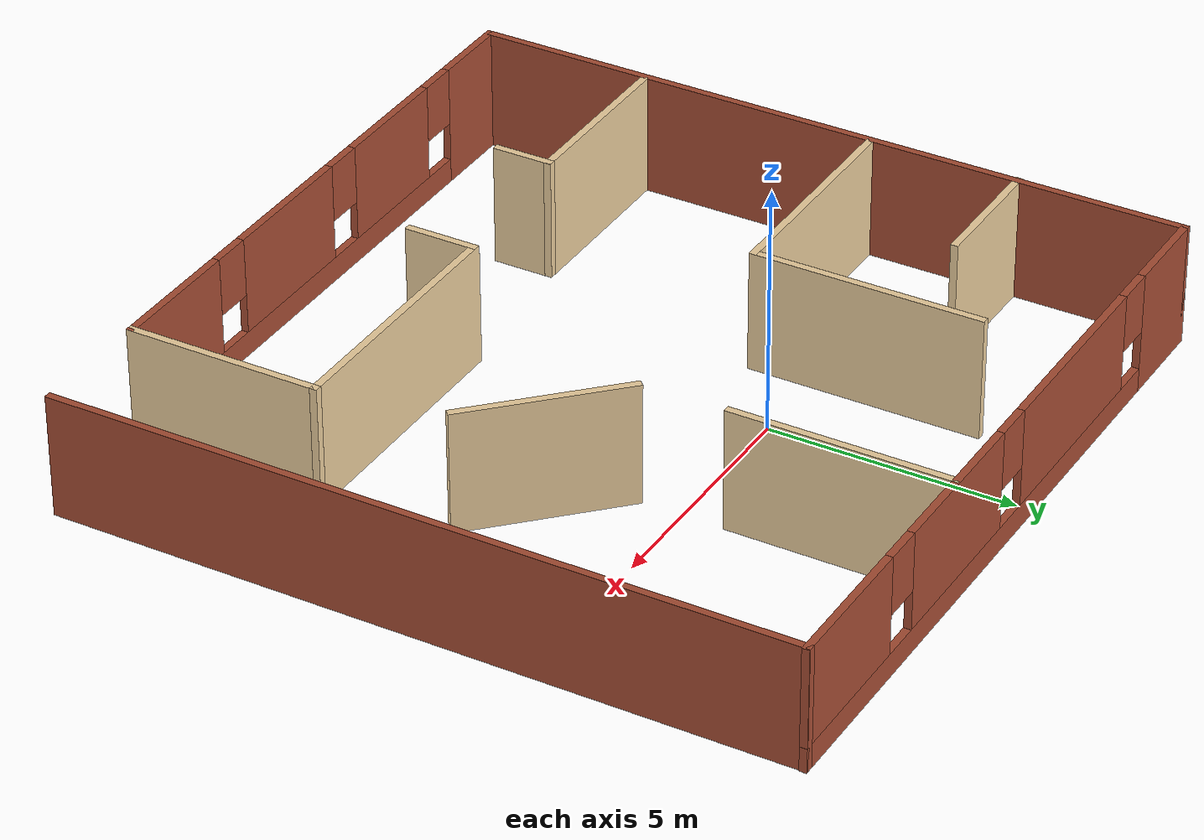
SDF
<?xml version='1.0'?>
<sdf version='1.7'>
  <model name='gMaze8'>
    <pose>1.10397 -2.1707 0 0 -0 0</pose>
    <link name='Wall_0'>
      <pose>0.009097 7.425 0 0 -0 0</pose>
      <visual name='Wall_0_Visual_0'>
        <pose>-6.50945 0 1.25 0 -0 0</pose>
        <geometry>
          <box>
            <size>1.98109 0.15 2.5</size>
          </box>
        </geometry>
        <material>
          <script>
            <uri>file://media/materials/scripts/gazebo.material</uri>
            <name>Gazebo/Bricks</name>
          </script>
          <ambient>1 1 1 1</ambient>
        </material>
        <meta>
          <layer>0</layer>
        </meta>
      </visual>
      <collision name='Wall_0_Collision_0'>
        <geometry>
          <box>
            <size>1.98109 0.15 2.5</size>
          </box>
        </geometry>
        <pose>-6.50945 0 1.25 0 -0 0</pose>
      </collision>
      <visual name='Wall_0_Visual_1'>
        <pose>0.990545 0 0.25 0 -0 0</pose>
        <geometry>
          <box>
            <size>13.0189 0.15 0.5</size>
          </box>
        </geometry>
        <material>
          <script>
            <uri>file://media/materials/scripts/gazebo.material</uri>
            <name>Gazebo/Bricks</name>
          </script>
          <ambient>1 1 1 1</ambient>
        </material>
        <meta>
          <layer>0</layer>
        </meta>
      </visual>
      <collision name='Wall_0_Collision_1'>
        <geometry>
          <box>
            <size>13.0189 0.15 0.5</size>
          </box>
        </geometry>
        <pose>0.990545 0 0.25 0 -0 0</pose>
      </collision>
      <visual name='Wall_0_Visual_2'>
        <pose>-2.60363 0 1.5 0 -0 0</pose>
        <geometry>
          <box>
            <size>4.23056 0.15 2</size>
          </box>
        </geometry>
        <material>
          <script>
            <uri>file://media/materials/scripts/gazebo.material</uri>
            <name>Gazebo/Bricks</name>
          </script>
          <ambient>1 1 1 1</ambient>
        </material>
        <meta>
          <layer>0</layer>
        </meta>
      </visual>
      <collision name='Wall_0_Collision_2'>
        <geometry>
          <box>
            <size>4.23056 0.15 2</size>
          </box>
        </geometry>
        <pose>-2.60363 0 1.5 0 -0 0</pose>
      </collision>
      <visual name='Wall_0_Visual_3'>
        <pose>2.02238 0 1.5 0 -0 0</pose>
        <geometry>
          <box>
            <size>3.42145 0.15 2</size>
          </box>
        </geometry>
        <material>
          <script>
            <uri>file://media/materials/scripts/gazebo.material</uri>
            <name>Gazebo/Bricks</name>
          </script>
          <ambient>1 1 1 1</ambient>
        </material>
        <meta>
          <layer>0</layer>
        </meta>
      </visual>
      <collision name='Wall_0_Collision_3'>
        <geometry>
          <box>
            <size>3.42145 0.15 2</size>
          </box>
        </geometry>
        <pose>2.02238 0 1.5 0 -0 0</pose>
      </collision>
      <visual name='Wall_0_Visual_4'>
        <pose>6.01655 0 1.5 0 -0 0</pose>
        <geometry>
          <box>
            <size>2.9669 0.15 2</size>
          </box>
        </geometry>
        <material>
          <script>
            <uri>file://media/materials/scripts/gazebo.material</uri>
            <name>Gazebo/Bricks</name>
          </script>
          <ambient>1 1 1 1</ambient>
        </material>
        <meta>
          <layer>0</layer>
        </meta>
      </visual>
      <collision name='Wall_0_Collision_4'>
        <geometry>
          <box>
            <size>2.9669 0.15 2</size>
          </box>
        </geometry>
        <pose>6.01655 0 1.5 0 -0 0</pose>
      </collision>
      <visual name='Wall_0_Visual_5'>
        <pose>-5.11891 0 1.9 0 -0 0</pose>
        <geometry>
          <box>
            <size>0.8 0.15 1.2</size>
          </box>
        </geometry>
        <material>
          <script>
            <uri>file://media/materials/scripts/gazebo.material</uri>
            <name>Gazebo/Bricks</name>
          </script>
          <ambient>1 1 1 1</ambient>
        </material>
        <meta>
          <layer>0</layer>
        </meta>
      </visual>
      <collision name='Wall_0_Collision_5'>
        <geometry>
          <box>
            <size>0.8 0.15 1.2</size>
          </box>
        </geometry>
        <pose>-5.11891 0 1.9 0 -0 0</pose>
      </collision>
      <visual name='Wall_0_Visual_6'>
        <pose>-0.088347 0 1.9 0 -0 0</pose>
        <geometry>
          <box>
            <size>0.8 0.15 1.2</size>
          </box>
        </geometry>
        <material>
          <script>
            <uri>file://media/materials/scripts/gazebo.material</uri>
            <name>Gazebo/Bricks</name>
          </script>
          <ambient>1 1 1 1</ambient>
        </material>
        <meta>
          <layer>0</layer>
        </meta>
      </visual>
      <collision name='Wall_0_Collision_6'>
        <geometry>
          <box>
            <size>0.8 0.15 1.2</size>
          </box>
        </geometry>
        <pose>-0.088347 0 1.9 0 -0 0</pose>
      </collision>
      <visual name='Wall_0_Visual_7'>
        <pose>4.1331 0 1.9 0 -0 0</pose>
        <geometry>
          <box>
            <size>0.8 0.15 1.2</size>
          </box>
        </geometry>
        <material>
          <script>
            <uri>file://media/materials/scripts/gazebo.material</uri>
            <name>Gazebo/Bricks</name>
          </script>
          <ambient>1 1 1 1</ambient>
        </material>
        <meta>
          <layer>0</layer>
        </meta>
      </visual>
      <collision name='Wall_0_Collision_7'>
        <geometry>
          <box>
            <size>0.8 0.15 1.2</size>
          </box>
        </geometry>
        <pose>4.1331 0 1.9 0 -0 0</pose>
      </collision>
    </link>
    <link name='Wall_1'>
      <collision name='Wall_1_Collision'>
        <geometry>
          <box>
            <size>15 0.15 2.5</size>
          </box>
        </geometry>
        <pose>0 0 1.25 0 -0 0</pose>
      </collision>
      <visual name='Wall_1_Visual'>
        <pose>0 0 1.25 0 -0 0</pose>
        <geometry>
          <box>
            <size>15 0.15 2.5</size>
          </box>
        </geometry>
        <material>
          <script>
            <uri>file://media/materials/scripts/gazebo.material</uri>
            <name>Gazebo/Bricks</name>
          </script>
          <ambient>1 1 1 1</ambient>
        </material>
        <meta>
          <layer>0</layer>
        </meta>
      </visual>
      <pose>7.41398 -0 0 0 -0 -1.5708</pose>
    </link>
    <link name='Wall_3'>
      <collision name='Wall_3_Collision'>
        <geometry>
          <box>
            <size>15 0.15 2.5</size>
          </box>
        </geometry>
        <pose>0 0 1.25 0 -0 0</pose>
      </collision>
      <visual name='Wall_3_Visual'>
        <pose>0 0 1.25 0 -0 0</pose>
        <geometry>
          <box>
            <size>15 0.15 2.5</size>
          </box>
        </geometry>
        <material>
          <script>
            <uri>file://media/materials/scripts/gazebo.material</uri>
            <name>Gazebo/Bricks</name>
          </script>
          <ambient>1 1 1 1</ambient>
        </material>
        <meta>
          <layer>0</layer>
        </meta>
      </visual>
      <pose>-7.4159 -0 0 0 -0 -1.5708</pose>
    </link>
    <link name='Wall_4'>
      <pose>-1.2409 -7.425 0 0 -0 0</pose>
      <visual name='Wall_4_Visual_0'>
        <pose>-5.37558 0 1.25 0 -0 0</pose>
        <geometry>
          <box>
            <size>1.74884 0.15 2.5</size>
          </box>
        </geometry>
        <material>
          <script>
            <uri>file://media/materials/scripts/gazebo.material</uri>
            <name>Gazebo/Bricks</name>
          </script>
          <ambient>1 1 1 1</ambient>
        </material>
        <meta>
          <layer>0</layer>
        </meta>
      </visual>
      <collision name='Wall_4_Collision_0'>
        <geometry>
          <box>
            <size>1.74884 0.15 2.5</size>
          </box>
        </geometry>
        <pose>-5.37558 0 1.25 0 -0 0</pose>
      </collision>
      <visual name='Wall_4_Visual_1'>
        <pose>0.87442 0 0.25 0 -0 0</pose>
        <geometry>
          <box>
            <size>10.7512 0.15 0.5</size>
          </box>
        </geometry>
        <material>
          <script>
            <uri>file://media/materials/scripts/gazebo.material</uri>
            <name>Gazebo/Bricks</name>
          </script>
          <ambient>1 1 1 1</ambient>
        </material>
        <meta>
          <layer>0</layer>
        </meta>
      </visual>
      <collision name='Wall_4_Collision_1'>
        <geometry>
          <box>
            <size>10.7512 0.15 0.5</size>
          </box>
        </geometry>
        <pose>0.87442 0 0.25 0 -0 0</pose>
      </collision>
      <visual name='Wall_4_Visual_2'>
        <pose>-2.40199 0 1.5 0 -0 0</pose>
        <geometry>
          <box>
            <size>2.59834 0.15 2</size>
          </box>
        </geometry>
        <material>
          <script>
            <uri>file://media/materials/scripts/gazebo.material</uri>
            <name>Gazebo/Bricks</name>
          </script>
          <ambient>1 1 1 1</ambient>
        </material>
        <meta>
          <layer>0</layer>
        </meta>
      </visual>
      <collision name='Wall_4_Collision_2'>
        <geometry>
          <box>
            <size>2.59834 0.15 2</size>
          </box>
        </geometry>
        <pose>-2.40199 0 1.5 0 -0 0</pose>
      </collision>
      <visual name='Wall_4_Visual_3'>
        <pose>1.19683 0 1.5 0 -0 0</pose>
        <geometry>
          <box>
            <size>2.99931 0.15 2</size>
          </box>
        </geometry>
        <material>
          <script>
            <uri>file://media/materials/scripts/gazebo.material</uri>
            <name>Gazebo/Bricks</name>
          </script>
          <ambient>1 1 1 1</ambient>
        </material>
        <meta>
          <layer>0</layer>
        </meta>
      </visual>
      <collision name='Wall_4_Collision_3'>
        <geometry>
          <box>
            <size>2.99931 0.15 2</size>
          </box>
        </geometry>
        <pose>1.19683 0 1.5 0 -0 0</pose>
      </collision>
      <visual name='Wall_4_Visual_4'>
        <pose>4.87324 0 1.5 0 -0 0</pose>
        <geometry>
          <box>
            <size>2.75352 0.15 2</size>
          </box>
        </geometry>
        <material>
          <script>
            <uri>file://media/materials/scripts/gazebo.material</uri>
            <name>Gazebo/Bricks</name>
          </script>
          <ambient>1 1 1 1</ambient>
        </material>
        <meta>
          <layer>0</layer>
        </meta>
      </visual>
      <collision name='Wall_4_Collision_4'>
        <geometry>
          <box>
            <size>2.75352 0.15 2</size>
          </box>
        </geometry>
        <pose>4.87324 0 1.5 0 -0 0</pose>
      </collision>
      <visual name='Wall_4_Visual_5'>
        <pose>-4.10116 0 1.9 0 -0 0</pose>
        <geometry>
          <box>
            <size>0.8 0.15 1.2</size>
          </box>
        </geometry>
        <material>
          <script>
            <uri>file://media/materials/scripts/gazebo.material</uri>
            <name>Gazebo/Bricks</name>
          </script>
          <ambient>1 1 1 1</ambient>
        </material>
        <meta>
          <layer>0</layer>
        </meta>
      </visual>
      <collision name='Wall_4_Collision_5'>
        <geometry>
          <box>
            <size>0.8 0.15 1.2</size>
          </box>
        </geometry>
        <pose>-4.10116 0 1.9 0 -0 0</pose>
      </collision>
      <visual name='Wall_4_Visual_6'>
        <pose>-0.702821 0 1.9 0 -0 0</pose>
        <geometry>
          <box>
            <size>0.8 0.15 1.2</size>
          </box>
        </geometry>
        <material>
          <script>
            <uri>file://media/materials/scripts/gazebo.material</uri>
            <name>Gazebo/Bricks</name>
          </script>
          <ambient>1 1 1 1</ambient>
        </material>
        <meta>
          <layer>0</layer>
        </meta>
      </visual>
      <collision name='Wall_4_Collision_6'>
        <geometry>
          <box>
            <size>0.8 0.15 1.2</size>
          </box>
        </geometry>
        <pose>-0.702821 0 1.9 0 -0 0</pose>
      </collision>
      <visual name='Wall_4_Visual_7'>
        <pose>3.09648 0 1.9 0 -0 0</pose>
        <geometry>
          <box>
            <size>0.8 0.15 1.2</size>
          </box>
        </geometry>
        <material>
          <script>
            <uri>file://media/materials/scripts/gazebo.material</uri>
            <name>Gazebo/Bricks</name>
          </script>
          <ambient>1 1 1 1</ambient>
        </material>
        <meta>
          <layer>0</layer>
        </meta>
      </visual>
      <collision name='Wall_4_Collision_7'>
        <geometry>
          <box>
            <size>0.8 0.15 1.2</size>
          </box>
        </geometry>
        <pose>3.09648 0 1.9 0 -0 0</pose>
      </collision>
    </link>
    <link name='Wall_56'>
      <collision name='Wall_56_Collision'>
        <geometry>
          <box>
            <size>4 0.15 2.5</size>
          </box>
        </geometry>
        <pose>0 0 1.25 0 -0 0</pose>
      </collision>
      <visual name='Wall_56_Visual'>
        <pose>0 0 1.25 0 -0 0</pose>
        <geometry>
          <box>
            <size>4 0.15 2.5</size>
          </box>
        </geometry>
        <material>
          <script>
            <uri>file://media/materials/scripts/gazebo.material</uri>
            <name>Gazebo/Grey</name>
          </script>
          <ambient>0.921569 0.807843 0.615686 1</ambient>
        </material>
        <meta>
          <layer>0</layer>
        </meta>
      </visual>
      <pose>4.9341 -5.5 0 0 -0 1.5708</pose>
    </link>
    <link name='Wall_57'>
      <collision name='Wall_57_Collision'>
        <geometry>
          <box>
            <size>5.5 0.15 2.5</size>
          </box>
        </geometry>
        <pose>0 0 1.25 0 -0 0</pose>
      </collision>
      <visual name='Wall_57_Visual'>
        <pose>0 0 1.25 0 -0 0</pose>
        <geometry>
          <box>
            <size>5.5 0.15 2.5</size>
          </box>
        </geometry>
        <material>
          <script>
            <uri>file://media/materials/scripts/gazebo.material</uri>
            <name>Gazebo/Grey</name>
          </script>
          <ambient>0.921569 0.807843 0.615686 1</ambient>
        </material>
        <meta>
          <layer>0</layer>
        </meta>
      </visual>
      <pose>2.2591 -3.575 0 0 -0 3.14159</pose>
    </link>
    <link name='Wall_58'>
      <collision name='Wall_58_Collision'>
        <geometry>
          <box>
            <size>1.5 0.15 2.5</size>
          </box>
        </geometry>
        <pose>0 0 1.25 0 -0 0</pose>
      </collision>
      <visual name='Wall_58_Visual'>
        <pose>0 0 1.25 0 -0 0</pose>
        <geometry>
          <box>
            <size>1.5 0.15 2.5</size>
          </box>
        </geometry>
        <material>
          <script>
            <uri>file://media/materials/scripts/gazebo.material</uri>
            <name>Gazebo/Grey</name>
          </script>
          <ambient>0.921569 0.807843 0.615686 1</ambient>
        </material>
        <meta>
          <layer>0</layer>
        </meta>
      </visual>
      <pose>-0.415903 -4.25 0 0 -0 -1.5708</pose>
    </link>
    <link name='Wall_64'>
      <collision name='Wall_64_Collision'>
        <geometry>
          <box>
            <size>4.75 0.15 2.5</size>
          </box>
        </geometry>
        <pose>0 0 1.25 0 -0 0</pose>
      </collision>
      <visual name='Wall_64_Visual'>
        <pose>0 0 1.25 0 -0 0</pose>
        <geometry>
          <box>
            <size>4.75 0.15 2.5</size>
          </box>
        </geometry>
        <material>
          <script>
            <uri>file://media/materials/scripts/gazebo.material</uri>
            <name>Gazebo/Grey</name>
          </script>
          <ambient>0.921569 0.807843 0.615686 1</ambient>
        </material>
        <meta>
          <layer>0</layer>
        </meta>
      </visual>
      <pose>-5.06125 0.974344 0 0 -0 0</pose>
    </link>
    <link name='Wall_65'>
      <collision name='Wall_65_Collision'>
        <geometry>
          <box>
            <size>4.75 0.15 2.5</size>
          </box>
        </geometry>
        <pose>0 0 1.25 0 -0 0</pose>
      </collision>
      <visual name='Wall_65_Visual'>
        <pose>0 0 1.25 0 -0 0</pose>
        <geometry>
          <box>
            <size>4.75 0.15 2.5</size>
          </box>
        </geometry>
        <material>
          <script>
            <uri>file://media/materials/scripts/gazebo.material</uri>
            <name>Gazebo/Grey</name>
          </script>
          <ambient>0.921569 0.807843 0.615686 1</ambient>
        </material>
        <meta>
          <layer>0</layer>
        </meta>
      </visual>
      <pose>-2.76125 3.27434 0 0 -0 1.5708</pose>
    </link>
    <link name='Wall_67'>
      <collision name='Wall_67_Collision'>
        <geometry>
          <box>
            <size>3.5 0.15 2.5</size>
          </box>
        </geometry>
        <pose>0 0 1.25 0 -0 0</pose>
      </collision>
      <visual name='Wall_67_Visual'>
        <pose>0 0 1.25 0 -0 0</pose>
        <geometry>
          <box>
            <size>3.5 0.15 2.5</size>
          </box>
        </geometry>
        <material>
          <script>
            <uri>file://media/materials/scripts/gazebo.material</uri>
            <name>Gazebo/Grey</name>
          </script>
          <ambient>0.921569 0.807843 0.615686 1</ambient>
        </material>
        <meta>
          <layer>0</layer>
        </meta>
      </visual>
      <pose>3.25106 0.07137 0 0 -0 -0.785398</pose>
    </link>
    <link name='Wall_69'>
      <collision name='Wall_69_Collision'>
        <geometry>
          <box>
            <size>4.5 0.15 2.5</size>
          </box>
        </geometry>
        <pose>0 0 1.25 0 -0 0</pose>
      </collision>
      <visual name='Wall_69_Visual'>
        <pose>0 0 1.25 0 -0 0</pose>
        <geometry>
          <box>
            <size>4.5 0.15 2.5</size>
          </box>
        </geometry>
        <material>
          <script>
            <uri>file://media/materials/scripts/gazebo.material</uri>
            <name>Gazebo/Grey</name>
          </script>
          <ambient>0.921569 0.807843 0.615686 1</ambient>
        </material>
        <meta>
          <layer>0</layer>
        </meta>
      </visual>
      <pose>1.9963 5.22489 0 0 -0 1.5708</pose>
    </link>
    <link name='Wall_71'>
      <collision name='Wall_71_Collision'>
        <geometry>
          <box>
            <size>1.25 0.15 2.5</size>
          </box>
        </geometry>
        <pose>0 0 1.25 0 -0 0</pose>
      </collision>
      <visual name='Wall_71_Visual'>
        <pose>0 0 1.25 0 -0 0</pose>
        <geometry>
          <box>
            <size>1.25 0.15 2.5</size>
          </box>
        </geometry>
        <material>
          <script>
            <uri>file://media/materials/scripts/gazebo.material</uri>
            <name>Gazebo/Grey</name>
          </script>
          <ambient>0.921569 0.807843 0.615686 1</ambient>
        </material>
        <meta>
          <layer>0</layer>
        </meta>
      </visual>
      <pose>-3.70266 -4.45605 0 0 -0 1.5708</pose>
    </link>
    <link name='Wall_72'>
      <collision name='Wall_72_Collision'>
        <geometry>
          <box>
            <size>3.75 0.15 2.5</size>
          </box>
        </geometry>
        <pose>0 0 1.25 0 -0 0</pose>
      </collision>
      <visual name='Wall_72_Visual'>
        <pose>0 0 1.25 0 -0 0</pose>
        <geometry>
          <box>
            <size>3.75 0.15 2.5</size>
          </box>
        </geometry>
        <material>
          <script>
            <uri>file://media/materials/scripts/gazebo.material</uri>
            <name>Gazebo/Grey</name>
          </script>
          <ambient>0.921569 0.807843 0.615686 1</ambient>
        </material>
        <meta>
          <layer>0</layer>
        </meta>
      </visual>
      <pose>-5.50266 -3.90605 0 0 -0 3.14159</pose>
    </link>
    <link name='Wall_74'>
      <collision name='Wall_74_Collision'>
        <geometry>
          <box>
            <size>2.75 0.15 2.5</size>
          </box>
        </geometry>
        <pose>0 0 1.25 0 -0 0</pose>
      </collision>
      <visual name='Wall_74_Visual'>
        <pose>0 0 1.25 0 -0 0</pose>
        <geometry>
          <box>
            <size>2.75 0.15 2.5</size>
          </box>
        </geometry>
        <material>
          <script>
            <uri>file://media/materials/scripts/gazebo.material</uri>
            <name>Gazebo/Grey</name>
          </script>
          <ambient>0.921569 0.807843 0.615686 1</ambient>
        </material>
        <meta>
          <layer>0</layer>
        </meta>
      </visual>
      <pose>-6.1341 4.03233 0 0 -0 0</pose>
    </link>
    <static>1</static>
  </model>
</sdf>
